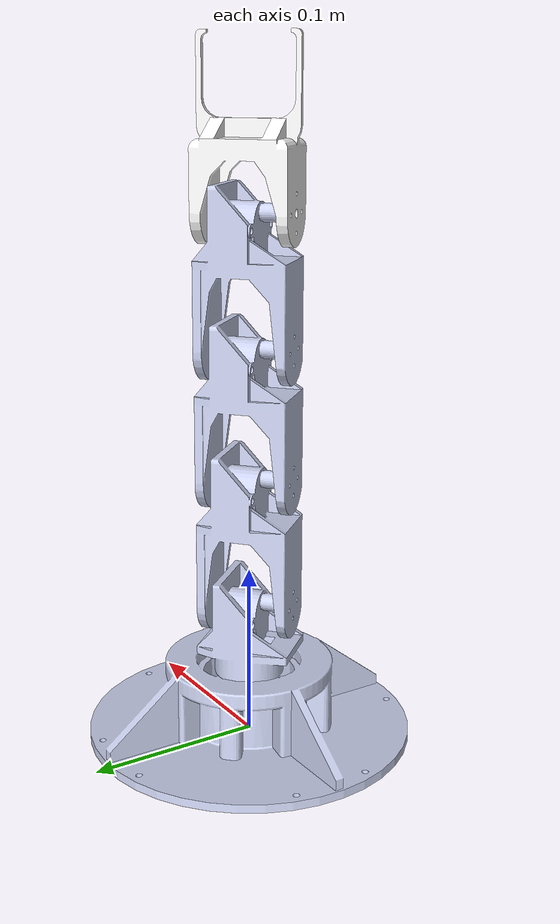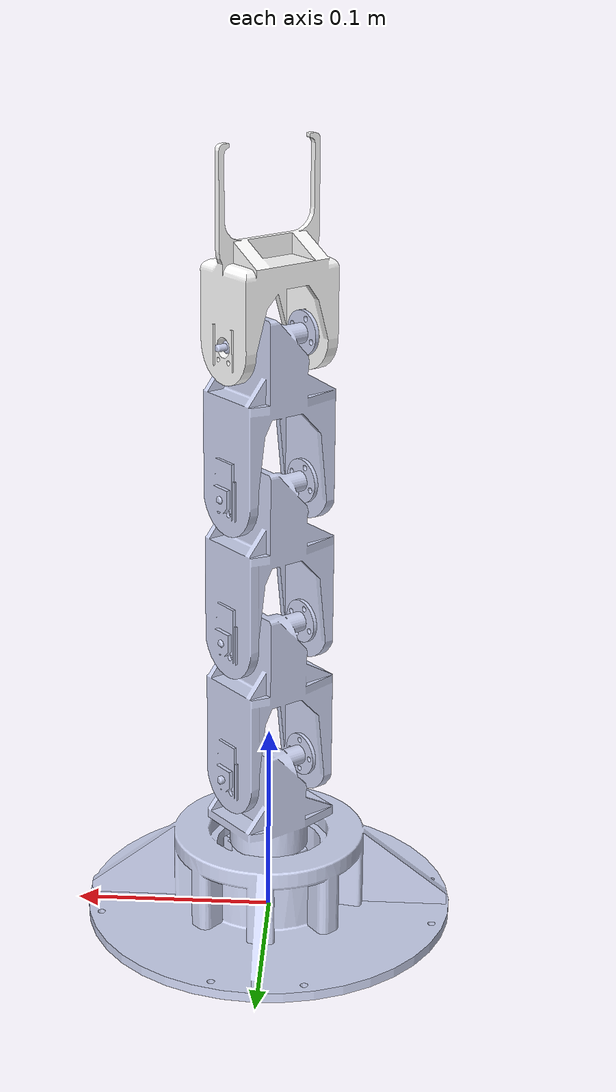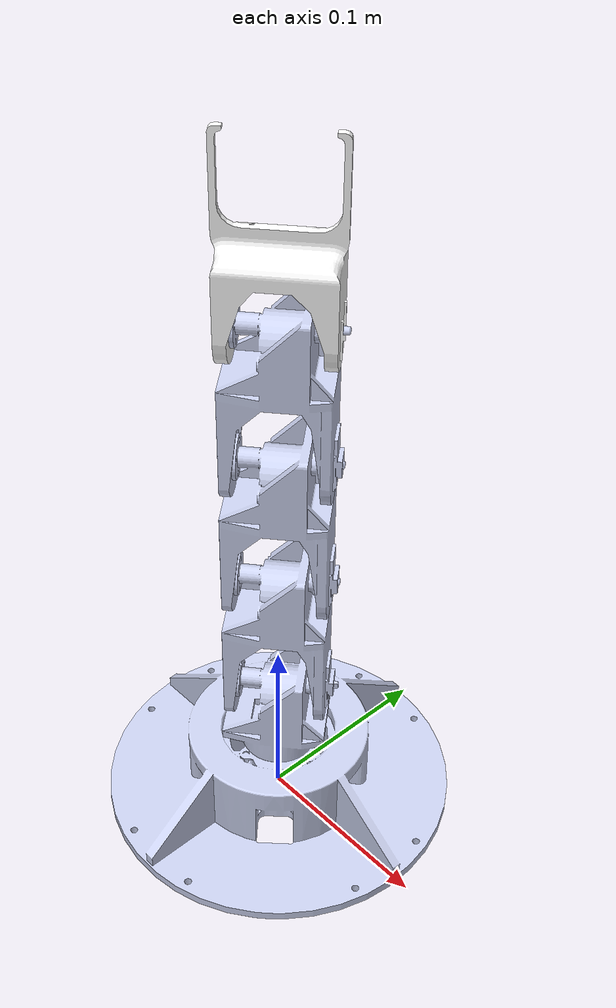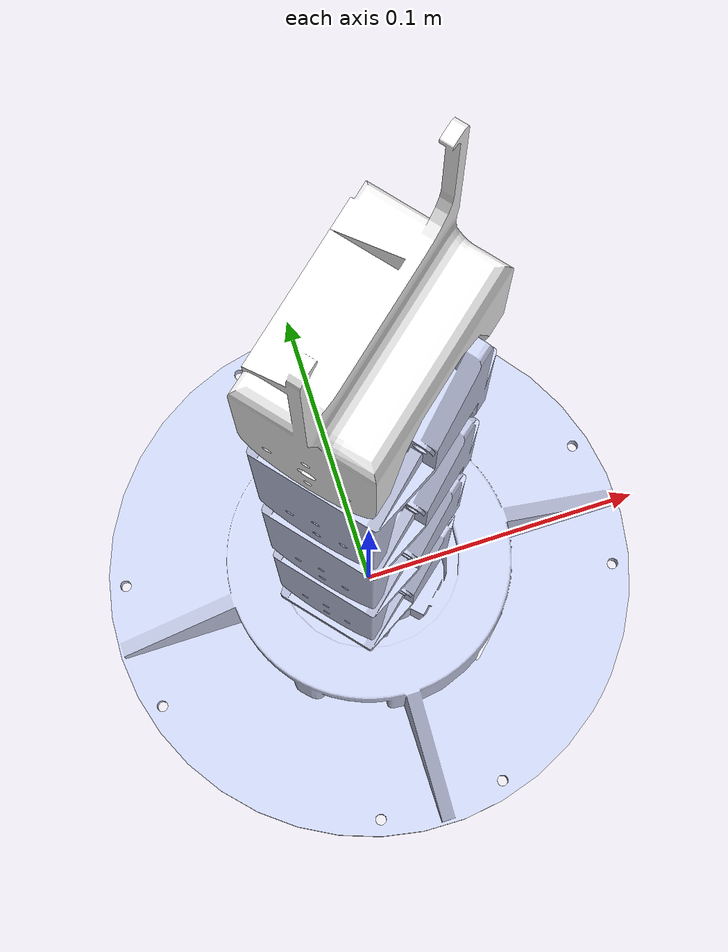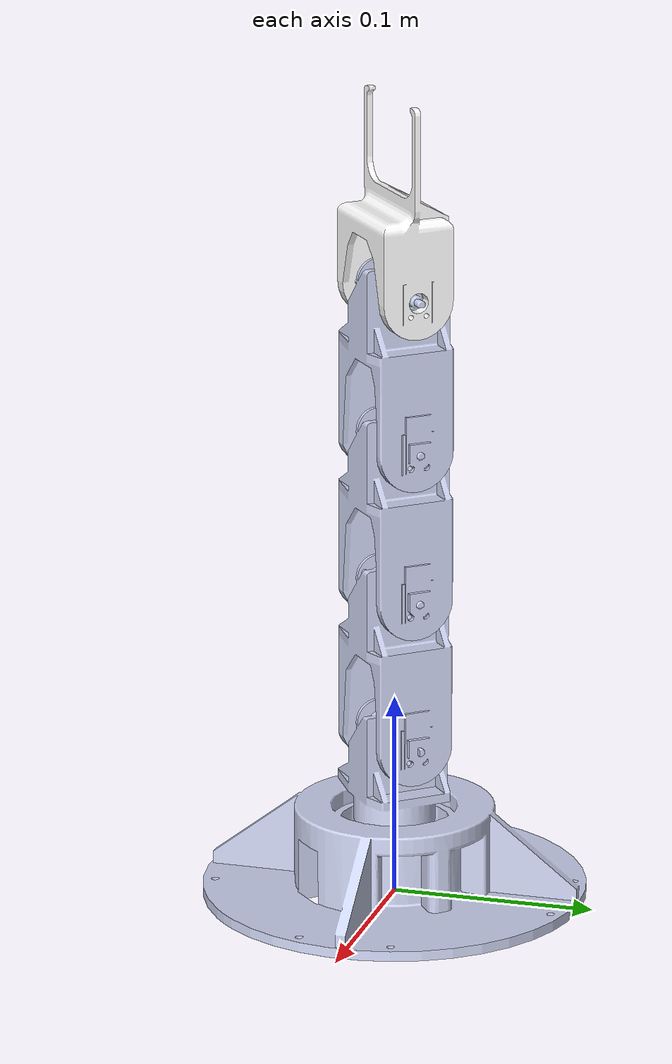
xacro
<?xml version="1.0"?>
<robot name="mybot" xmlns:xacro="http://www.ros.org/wiki/xacro">

<!--include files -->
<xacro:include filename="$(find mybot_description)/urdf/moveit_gazebo/mybot.gazebo" />

<!-- Used for fixing robot to Gazebo 'base_link' -->

<!--robot description-->
<link
    name="base_link">
    <inertial>
      <origin
        xyz="0.00059823 -0.00070645 0.015343"
        rpy="0 0 0" />
      <mass
        value="0.31947" />
      <inertia
        ixx="0.00052125"
        ixy="1.1384E-07"
        ixz="-2.2716E-06"
        iyy="0.0005196"
        iyz="2.4232E-06"
        izz="0.00091204" />
    </inertial>
    <visual>
      <origin
        xyz="0 0 0"
        rpy="0 0 0" />
      <geometry>
        <mesh
          filename="package://mybot_description/meshes/base_link.STL" />
      </geometry>
      <material
        name="">
        <color
          rgba="0.79216 0.81961 0.93333 1" />
      </material>
    </visual>
    <collision>
      <origin
        xyz="0 0 0"
        rpy="0 0 0" />
      <geometry>
        <mesh
          filename="package://mybot_description/meshes/base_link.STL" />
      </geometry>
    </collision>
  </link>
  <link
    name="link0">
    <inertial>
      <origin
        xyz="0.0015406 0.0013202 0.030331"
        rpy="0 0 0" />
      <mass
        value="0.053848" />
      <inertia
        ixx="1.7354E-05"
        ixy="4.9601E-07"
        ixz="-1.0513E-06"
        iyy="1.7196E-05"
        iyz="-9.0113E-07"
        izz="1.3819E-05" />
    </inertial>
    <visual>
      <origin
        xyz="0 0 0"
        rpy="0 0 0" />
      <geometry>
        <mesh
          filename="package://mybot_description/meshes/link0.STL" />
      </geometry>
      <material
        name="">
        <color
          rgba="0.79216 0.81961 0.93333 1" />
      </material>
    </visual>
    <collision>
      <origin
        xyz="0 0 0"
        rpy="0 0 0" />
      <geometry>
        <mesh
          filename="package://mybot_description/meshes/link0.STL" />
      </geometry>
    </collision>
  </link>
  <joint
    name="joint0"
    type="revolute">
    <origin
      xyz="0 0 0.032517"
      rpy="-1.3289E-17 -1.2317E-16 -1.1102E-14" />
    <parent
      link="base_link" />
    <child
      link="link0" />
    <axis
      xyz="0 0 1" />
    <limit
      lower="-3.14"
      upper="3.14"
      effort="1"
      velocity="0.5" />
  </joint>
  <link
    name="link1">
    <inertial>
      <origin
        xyz="0.023455 -1.7325E-08 0.044232"
        rpy="0 0 0" />
      <mass
        value="0.066865" />
      <inertia
        ixx="5.3591E-05"
        ixy="-9.3675E-12"
        ixz="2.5595E-06"
        iyy="6.2629E-05"
        iyz="1.3043E-10"
        izz="2.7389E-05" />
    </inertial>
    <visual>
      <origin
        xyz="0 0 0"
        rpy="0 0 0" />
      <geometry>
        <mesh
          filename="package://mybot_description/meshes/link1.STL" />
      </geometry>
      <material
        name="">
        <color
          rgba="0.79216 0.81961 0.93333 1" />
      </material>
    </visual>
    <collision>
      <origin
        xyz="0 0 0"
        rpy="0 0 0" />
      <geometry>
        <mesh
          filename="package://mybot_description/meshes/link1.STL" />
      </geometry>
    </collision>
  </link>
  <joint
    name="joint1"
    type="revolute">
    <origin
      xyz="0.019303 0.016509 0.048983"
      rpy="-2.7272E-16 -4.6161E-16 -2.434" />
    <parent
      link="link0" />
    <child
      link="link1" />
    <axis
      xyz="-1 0 0" />
    <limit
      lower="-1.05"
      upper="1.05"
      effort="1"
      velocity="0.5" />
  </joint>
  <link
    name="link2">
    <inertial>
      <origin
        xyz="0.023455 -7.9525E-09 0.044232"
        rpy="0 0 0" />
      <mass
        value="0.066865" />
      <inertia
        ixx="5.3591E-05"
        ixy="-3.5917E-13"
        ixz="2.5596E-06"
        iyy="6.2629E-05"
        iyz="1.4247E-10"
        izz="2.7389E-05" />
    </inertial>
    <visual>
      <origin
        xyz="0 0 0"
        rpy="0 0 0" />
      <geometry>
        <mesh
          filename="package://mybot_description/meshes/link2.STL" />
      </geometry>
      <material
        name="">
        <color
          rgba="0.79216 0.81961 0.93333 1" />
      </material>
    </visual>
    <collision>
      <origin
        xyz="0 0 0"
        rpy="0 0 0" />
      <geometry>
        <mesh
          filename="package://mybot_description/meshes/link2.STL" />
      </geometry>
    </collision>
  </link>
  <joint
    name="joint2"
    type="revolute">
    <origin
      xyz="-0.0004 0 0.0745"
      rpy="2.5246E-18 1.9213E-15 3.8858E-16" />
    <parent
      link="link1" />
    <child
      link="link2" />
    <axis
      xyz="-1 0 0" />
    <limit
      lower="-1.05"
      upper="1.05"
      effort="1"
      velocity="0.5" />
  </joint>
  <link
    name="link3">
    <inertial>
      <origin
        xyz="0.023455 -1.7325E-08 0.044232"
        rpy="0 0 0" />
      <mass
        value="0.066865" />
      <inertia
        ixx="5.3591E-05"
        ixy="-9.3675E-12"
        ixz="2.5595E-06"
        iyy="6.2629E-05"
        iyz="1.3043E-10"
        izz="2.7389E-05" />
    </inertial>
    <visual>
      <origin
        xyz="0 0 0"
        rpy="0 0 0" />
      <geometry>
        <mesh
          filename="package://mybot_description/meshes/link3.STL" />
      </geometry>
      <material
        name="">
        <color
          rgba="0.79216 0.81961 0.93333 1" />
      </material>
    </visual>
    <collision>
      <origin
        xyz="0 0 0"
        rpy="0 0 0" />
      <geometry>
        <mesh
          filename="package://mybot_description/meshes/link3.STL" />
      </geometry>
    </collision>
  </link>
  <joint
    name="joint3"
    type="revolute">
    <origin
      xyz="-0.0004 0 0.0745"
      rpy="1.8711E-17 -2.2428E-15 -5.5511E-16" />
    <parent
      link="link2" />
    <child
      link="link3" />
    <axis
      xyz="-1 0 0" />
    <limit
      lower="-1.05"
      upper="1.05"
      effort="1"
      velocity="0.5" />
  </joint>
  <link
    name="gripper">
    <inertial>
      <origin
        xyz="0.027134 -0.00019736 0.02219"
        rpy="0 0 0" />
      <mass
        value="0.041798" />
      <inertia
        ixx="1.9479E-05"
        ixy="-1.1068E-09"
        ixz="1.5196E-07"
        iyy="3.3475E-05"
        iyz="9.0738E-08"
        izz="2.3209E-05" />
    </inertial>
    <visual>
      <origin
        xyz="0 0 0"
        rpy="0 0 0" />
      <geometry>
        <mesh
          filename="package://mybot_description/meshes/gripper.STL" />
      </geometry>
      <material
        name="">
        <color
          rgba="1 1 1 1" />
      </material>
    </visual>
    <collision>
      <origin
        xyz="0 0 0"
        rpy="0 0 0" />
      <geometry>
        <mesh
          filename="package://mybot_description/meshes/gripper.STL" />
      </geometry>
    </collision>
  </link>
  <joint
    name="joint4"
    type="revolute">
    <origin
      xyz="-0.0014 0 0.0745"
      rpy="2.4063E-16 1.3381E-15 1.0547E-15" />
    <parent
      link="link3" />
    <child
      link="gripper" />
    <axis
      xyz="-1 0 0" />
    <limit
      lower="-1.05"
      upper="1.05"
      effort="1"
      velocity="0.5" />
  </joint>

<!--transmission-->
<transmission name="tran0">
    <type>transmission_interface/SimpleTransmission</type>
    <joint name="joint0">
      <hardwareInterface>hardware_interface/PositionJointInterface</hardwareInterface>
    </joint>
    <actuator name="motor0">
      <mechanicalReduction>1</mechanicalReduction>
      <hardwareInterface>hardware_interface/PositionJointInterface</hardwareInterface>

    </actuator>
  </transmission>

<transmission name="tran1">
    <type>transmission_interface/SimpleTransmission</type>
    <joint name="joint1">
      <hardwareInterface>hardware_interface/PositionJointInterface</hardwareInterface>
    </joint>
    <actuator name="motor1">
      <mechanicalReduction>1</mechanicalReduction>
      <hardwareInterface>hardware_interface/PositionJointInterface</hardwareInterface>
    </actuator>
  </transmission>

<transmission name="tran2">
    <type>transmission_interface/SimpleTransmission</type>
    <joint name="joint2">
      <hardwareInterface>hardware_interface/PositionJointInterface</hardwareInterface>
    </joint>
    <actuator name="motor2">
      <mechanicalReduction>1</mechanicalReduction>
      <hardwareInterface>hardware_interface/PositionJointInterface</hardwareInterface>
    </actuator>
  </transmission>

<transmission name="tran3">
    <type>transmission_interface/SimpleTransmission</type>
    <joint name="joint3">
      <hardwareInterface>hardware_interface/PositionJointInterface</hardwareInterface>
    </joint>
    <actuator name="motor3">
      <mechanicalReduction>1</mechanicalReduction>
      <hardwareInterface>hardware_interface/PositionJointInterface</hardwareInterface>
    </actuator>
  </transmission>

<transmission name="tran4">
    <type>transmission_interface/SimpleTransmission</type>
    <joint name="joint4">
      <hardwareInterface>hardware_interface/PositionJointInterface</hardwareInterface>
    </joint>
    <actuator name="motor4">
      <mechanicalReduction>1</mechanicalReduction>
      <hardwareInterface>hardware_interface/PositionJointInterface</hardwareInterface>
    </actuator>
  </transmission>

</robot>
